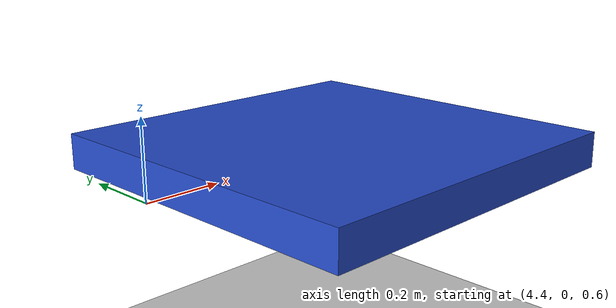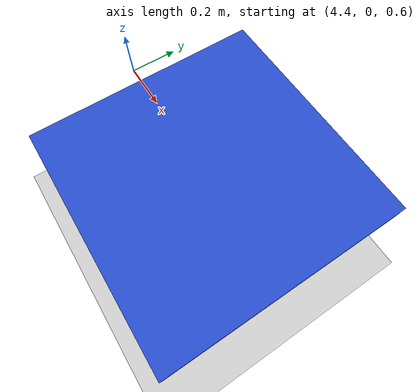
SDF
<?xml version="1.0" ?>
<sdf version="1.6">
  <world name="table">

    <!-- ใช้ ODE physics (สำคัญสำหรับ fdir1 บนล้อเมคานัม) -->
    <physics name="ode" type="ode">
      <max_step_size>0.001</max_step_size>
      <real_time_update_rate>1000</real_time_update_rate>
      <ode>
        <solver>
          <type>quick</type>
          <iters>50</iters>
          <sor>1.3</sor>
        </solver>
        <constraints>
          <cfm>0.0</cfm>
          <erp>0.2</erp>
        </constraints>
      </ode>
    </physics>

    <!-- Ground Plane -->
    <model name='ground_plane'>
      <static>1</static>
      <link name='ground_plane'>
        <collision name='collision'>
          <geometry>
            <plane>
              <normal>0 0 1</normal>
              <size>100 100</size>
            </plane>
          </geometry>
          <surface>
            <contact>
              <collide_bitmask>65535</collide_bitmask>
              <ode/>
            </contact>
            <friction>
              <ode>
                <!-- ให้พื้นเป็น isotropic ปกติ ก็พอ: mu = mu2 = 1.0 -->
                <mu>1.0</mu>
                <mu2>1.0</mu2>
              </ode>
              <torsional>
                <ode/>
              </torsional>
            </friction>
            <bounce/>
          </surface>
          <max_contacts>10</max_contacts>
        </collision>
        <visual name='visual'>
          <cast_shadows>0</cast_shadows>
          <geometry>
            <plane>
              <normal>0 0 1</normal>
              <size>100 100</size>
            </plane>
          </geometry>
          <material>
            <script>
              <uri>file://media/materials/scripts/gazebo.material</uri>
              <name>Gazebo/Grey</name>
            </script>
          </material>
        </visual>
        <self_collide>0</self_collide>
        <enable_wind>0</enable_wind>
        <kinematic>0</kinematic>
      </link>
    </model>

    <!-- Table -->
    <model name="table">
      <static>true</static>
      <link name="link">
        <collision name="collision">
          <geometry>
            <box>
              <size>1.0 1.0 0.1</size>
            </box>
          </geometry>
        </collision>
        <visual name="visual">
          <geometry>
            <box>
              <size>1.0 1.0 0.1</size>
            </box>
          </geometry>
          <material>
            <script>
              <uri>file://media/materials/scripts/gazebo.material</uri>
              <name>Gazebo/Blue</name>
            </script>
          </material>
        </visual>
      </link>
      <pose>5 0 0.6 0 0 0</pose>
    </model>

    <!-- Sun Light -->
    <light name='sun' type='directional'>
      <cast_shadows>0</cast_shadows>
      <pose frame=''>0 0 10 0 -0 0</pose>
      <diffuse>0.8 0.8 0.8 1</diffuse>
      <specular>0.2 0.2 0.2 1</specular>
      <attenuation>
        <range>1000</range>
        <constant>0.9</constant>
        <linear>0.01</linear>
        <quadratic>0.001</quadratic>
      </attenuation>
      <direction>-0.5 0.1 -0.9</direction>
    </light>
  </world>
</sdf>
